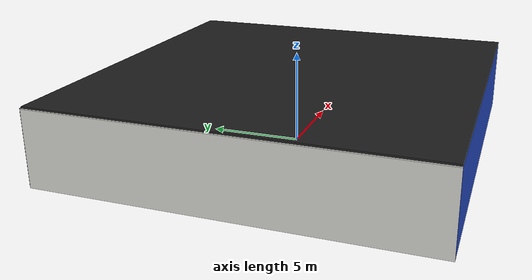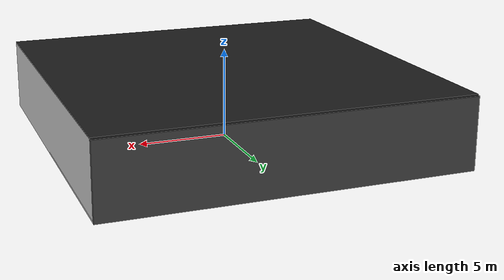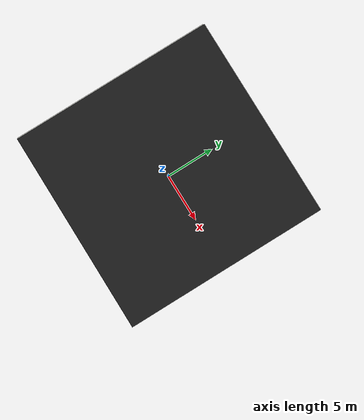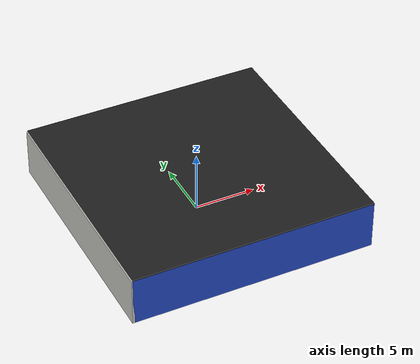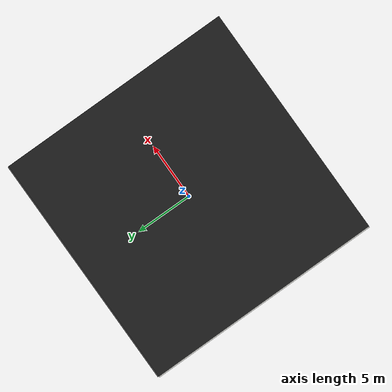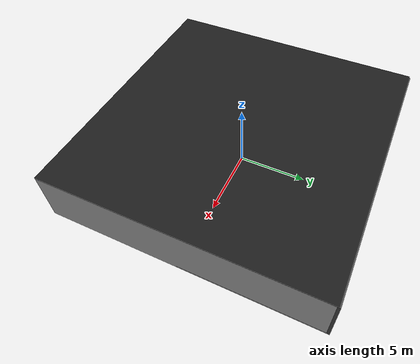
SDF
<sdf version="1.4">
 <world name="default">
  <physics type="ode">
   <max_step_size>0.001</max_step_size>
   <real_time_factor>1</real_time_factor>
   <real_time_update_rate>1000</real_time_update_rate>
   <gravity>0 0 -9.8</gravity>
  </physics>
  <scene><ambient>0.4 0.4 0.4 1</ambient><background>0.7 0.7 0.7 1</background><shadows>1</shadows></scene>
  <model name="Surrounding">
   <static>1</static>
   <link name="Ceiling">
    <collision name="Ceiling_Collision"><geometry><box><size>20 20 0.1</size></box></geometry></collision>
    <visual name="Ceiling_Visual">
     <geometry><box><size>20 20 0.1</size></box></geometry>
     <material>
      <script><uri>file://media/materials/scripts/gazebo.material</uri><name>Gazebo/FlatBlack</name></script>
     </material>
    </visual>
    <pose>0 0 4.05 0 0 0</pose>
   </link>
   <link name="Wall_South">
    <collision name="Wall_South_Collision">
     <geometry><box><size>20 0 4</size></box></geometry>
     <pose>0 0 2 0 -0 0</pose>
    </collision>
    <visual name="Wall_South_Visual">
     <pose>0 0 2 0 -0 0</pose>
     <geometry><box><size>20 0 4</size></box></geometry>
     <material>
      <script><uri>file://media/materials/scripts/gazebo.material</uri><name>Gazebo/BlueGlow</name></script>
     </material>
    </visual>
    <velocity_decay><linear>0</linear><angular>0</angular></velocity_decay>
    <pose>0 -10 0 0 -0 0</pose>
   </link>
   <link name="Wall_East">
    <collision name="Wall_21_Collision">
     <geometry><box><size>20 0 4</size></box></geometry>
     <pose>0 0 2 0 -0 0</pose>
    </collision>
    <visual name="Wall_21_Visual">
     <pose>0 0 2 0 -0 0</pose>
     <geometry><box><size>20 0 4</size></box></geometry>
     <material>
      <script><uri>file://media/materials/scripts/gazebo.material</uri><name>Gazebo/JointAnchor</name></script>
     </material>
    </visual>
    <velocity_decay><linear>0</linear><angular>0</angular></velocity_decay>
    <pose>10 0 0 0 -0 1.5708</pose>
   </link>
   <link name="Wall_North">
    <collision name="Wall_22_Collision">
     <geometry><box><size>20 0.2 4</size></box></geometry>
     <pose>0 0 2 0 -0 0</pose>
    </collision>
    <visual name="Wall_22_Visual">
     <pose>0 0 2 0 -0 0</pose>
     <geometry><box><size>20 0.2 4</size></box></geometry>
     <material>
      <script><uri>file://media/materials/scripts/gazebo.material</uri><name>Gazebo/Road</name></script>
     </material>
    </visual>
    <velocity_decay><linear>0</linear><angular>0</angular></velocity_decay>
    <pose>0 10 0 0 -0 0</pose>
   </link>
   <link name="Wall_West">
    <collision name="Wall_23_Collision">
     <geometry><box><size>20 0.2 4</size></box></geometry>
     <pose>0 0 2 0 -0 0</pose>
    </collision>
    <visual name="Wall_23_Visual">
     <pose>0 0 2 0 -0 0</pose>
     <geometry><box><size>20 0.2 4</size></box></geometry>
     <material>
      <script><uri>file://media/materials/scripts/gazebo.material</uri><name>Gazebo/CeilingTiled</name></script>
     </material>
    </visual>
    <velocity_decay><linear>0</linear><angular>0</angular></velocity_decay>
    <pose>-10 0 0 0 0 -1.5708</pose>
   </link>
   <link name="Ground_link">
    <collision name="collision">
     <pose>0 0 .05 0 -0 0</pose>
     <geometry><box><size>20 20 0.1</size></box></geometry>
    </collision>
    <visual name="visual">
     <pose>0 0 .05 0 -0 0</pose>
     <geometry><box><size>20 20 0.1</size></box></geometry>
     <material>
      <script><uri>file://media/materials/scripts/gazebo.material</uri><name>Gazebo/JointAnchor</name></script>
     </material>
    </visual>
   </link>
   <static>1</static>
  </model>
  <spherical_coordinates>
   <surface_model>EARTH_WGS84</surface_model>
   <latitude_deg>0</latitude_deg>
   <longitude_deg>0</longitude_deg>
   <elevation>0</elevation>
   <heading_deg>0</heading_deg>
  </spherical_coordinates>
  <light name="lightball_0" type="diffuse">
   <diffuse>0.8 0.8 0.8 1</diffuse>
   <specular>0.2 0.2 0.2 1</specular>
   <attenuation>
    <range>100</range>
    <constant>0.7</constant>
    <linear>0.01</linear>
    <quadratic>0.001</quadratic>
   </attenuation>
   <direction>-0.5 0.1 -0.9</direction>
   <pose>4.52435254474 7.42367523011 2.51180501733 0 0 0</pose>
  </light>
  <light name="lightball_1" type="diffuse">
   <diffuse>0.8 0.8 0.8 1</diffuse>
   <specular>0.2 0.2 0.2 1</specular>
   <attenuation>
    <range>100</range>
    <constant>0.7</constant>
    <linear>0.01</linear>
    <quadratic>0.001</quadratic>
   </attenuation>
   <direction>-0.5 0.1 -0.9</direction>
   <pose>-4.14038758982 3.16241583933 2.39055519579 0 0 0</pose>
  </light>
  <light name="lightball_2" type="diffuse">
   <diffuse>0.8 0.8 0.8 1</diffuse>
   <specular>0.2 0.2 0.2 1</specular>
   <attenuation>
    <range>100</range>
    <constant>0.7</constant>
    <linear>0.01</linear>
    <quadratic>0.001</quadratic>
   </attenuation>
   <direction>-0.5 0.1 -0.9</direction>
   <pose>5.85510148411 -0.958135277795 3.35988625924 0 0 0</pose>
  </light>
  <light name="lightball_3" type="diffuse">
   <diffuse>0.8 0.8 0.8 1</diffuse>
   <specular>0.2 0.2 0.2 1</specular>
   <attenuation>
    <range>100</range>
    <constant>0.7</constant>
    <linear>0.01</linear>
    <quadratic>0.001</quadratic>
   </attenuation>
   <direction>-0.5 0.1 -0.9</direction>
   <pose>-3.89772473005 -6.97204621742 1.54794939143 0 0 0</pose>
  </light>
  <light name="lightball_4" type="diffuse">
   <diffuse>0.8 0.8 0.8 1</diffuse>
   <specular>0.2 0.2 0.2 1</specular>
   <attenuation>
    <range>100</range>
    <constant>0.7</constant>
    <linear>0.01</linear>
    <quadratic>0.001</quadratic>
   </attenuation>
   <direction>-0.5 0.1 -0.9</direction>
   <pose>-9.78772869472 -5.99851279411 2.98050652992 0 0 0</pose>
  </light>
  <light name="lightball_5" type="diffuse">
   <diffuse>0.8 0.8 0.8 1</diffuse>
   <specular>0.2 0.2 0.2 1</specular>
   <attenuation>
    <range>100</range>
    <constant>0.7</constant>
    <linear>0.01</linear>
    <quadratic>0.001</quadratic>
   </attenuation>
   <direction>-0.5 0.1 -0.9</direction>
   <pose>-9.89491727601 -1.25797379377 1.05881618257 0 0 0</pose>
  </light>
  <light name="lightball_6" type="diffuse">
   <diffuse>0.8 0.8 0.8 1</diffuse>
   <specular>0.2 0.2 0.2 1</specular>
   <attenuation>
    <range>100</range>
    <constant>0.7</constant>
    <linear>0.01</linear>
    <quadratic>0.001</quadratic>
   </attenuation>
   <direction>-0.5 0.1 -0.9</direction>
   <pose>-3.3063745538 4.99317397564 3.68728444039 0 0 0</pose>
  </light>
  <light name="lightball_7" type="diffuse">
   <diffuse>0.8 0.8 0.8 1</diffuse>
   <specular>0.2 0.2 0.2 1</specular>
   <attenuation>
    <range>100</range>
    <constant>0.7</constant>
    <linear>0.01</linear>
    <quadratic>0.001</quadratic>
   </attenuation>
   <direction>-0.5 0.1 -0.9</direction>
   <pose>4.89386899163 -8.71217759403 3.56602216135 0 0 0</pose>
  </light>
  <light name="lightball_8" type="diffuse">
   <diffuse>0.8 0.8 0.8 1</diffuse>
   <specular>0.2 0.2 0.2 1</specular>
   <attenuation>
    <range>100</range>
    <constant>0.7</constant>
    <linear>0.01</linear>
    <quadratic>0.001</quadratic>
   </attenuation>
   <direction>-0.5 0.1 -0.9</direction>
   <pose>4.47927060152 5.05091940837 3.11136635086 0 0 0</pose>
  </light>
  <light name="lightball_9" type="diffuse">
   <diffuse>0.8 0.8 0.8 1</diffuse>
   <specular>0.2 0.2 0.2 1</specular>
   <attenuation>
    <range>100</range>
    <constant>0.7</constant>
    <linear>0.01</linear>
    <quadratic>0.001</quadratic>
   </attenuation>
   <direction>-0.5 0.1 -0.9</direction>
   <pose>-1.6585815375 -6.32316230591 2.09192974671 0 0 0</pose>
  </light>
  <light name="lightball_10" type="diffuse">
   <diffuse>0.8 0.8 0.8 1</diffuse>
   <specular>0.2 0.2 0.2 1</specular>
   <attenuation>
    <range>100</range>
    <constant>0.7</constant>
    <linear>0.01</linear>
    <quadratic>0.001</quadratic>
   </attenuation>
   <direction>-0.5 0.1 -0.9</direction>
   <pose>3.35106513686 9.35464012119 0.899845096138 0 0 0</pose>
  </light>
  <light name="lightball_11" type="diffuse">
   <diffuse>0.8 0.8 0.8 1</diffuse>
   <specular>0.2 0.2 0.2 1</specular>
   <attenuation>
    <range>100</range>
    <constant>0.7</constant>
    <linear>0.01</linear>
    <quadratic>0.001</quadratic>
   </attenuation>
   <direction>-0.5 0.1 -0.9</direction>
   <pose>-5.34488944536 -9.31203327461 2.28907664279 0 0 0</pose>
  </light>
  <light name="lightball_12" type="diffuse">
   <diffuse>0.8 0.8 0.8 1</diffuse>
   <specular>0.2 0.2 0.2 1</specular>
   <attenuation>
    <range>100</range>
    <constant>0.7</constant>
    <linear>0.01</linear>
    <quadratic>0.001</quadratic>
   </attenuation>
   <direction>-0.5 0.1 -0.9</direction>
   <pose>6.28519128283 6.47184356137 3.54695573068 0 0 0</pose>
  </light>
  <include>
   <uri>model://first_2015_trash_can</uri>
   <pose>-5.0545610886 -1.25196710235 0 0 0 0.101830029451</pose>
  </include>
  <include><uri>model://cabinet</uri><pose>-3.554715893 1.73719525485 0 0 0 1.0331494637</pose></include>
  <include>
   <uri>model://textured_shapes</uri>
   <pose>-0.930382331896 -6.51191862711 0 0 0 0.388141820762</pose>
  </include>
  <include>
   <uri>model://textured_shapes</uri>
   <pose>2.11013588918 -3.91022765055 0 0 0 0.120713430308</pose>
  </include>
  <include><uri>model://cabinet</uri><pose>8.14360539185 -1.16488231581 0 0 0 1.83792628271</pose></include>
 </world>
</sdf>

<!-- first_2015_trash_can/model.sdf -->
<sdf version="1.5">
  <model name="first_2015_trash_can">
    <link name="link">
      <inertial>
        <pose>0 0 0.3683 0 0 0</pose>
        <mass>4.83076</mass>
        <inertia>
          <ixx>0.281534052</ixx>
          <ixy>0</ixy>
          <ixz>0</ixz>
          <iyy>0.281534052</iyy>
          <iyz>0</iyz>
          <izz>0.126222831</izz>
        </inertia>
      </inertial>

      <visual name="visual">
        <geometry>
          <mesh>
            <uri>model://first_2015_trash_can/meshes/trash_can.dae</uri>
          </mesh>
        </geometry>
      </visual>

      <collision name="collision">
        <geometry>
          <mesh>
            <uri>model://first_2015_trash_can/meshes/trash_can.dae</uri>
          </mesh>
        </geometry>
      </collision>
    </link>
  </model>
</sdf>

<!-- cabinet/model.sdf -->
<sdf version="1.5">
  <model name="cabinet">
    <static>true</static>
    <link name="cabinet_bottom_plate">
      <inertial>
        <pose>0 0 -1 0 0 0</pose>
        <inertia>
          <ixx>2.050000</ixx>
          <ixy>0</ixy>
          <ixz>0</ixz>
          <iyy>2.050000</iyy>
          <iyz>0</iyz>
          <izz>2.050000</izz>
        </inertia>
        <mass>25.000000</mass>
      </inertial>
      <collision name="cabinet_bottom_plate_geom">
        <pose>0 0 0.010000 0 0 0</pose>
        <geometry>
          <box>
            <size>0.450000 0.450000 0.020000</size>
          </box>
        </geometry>
      </collision>
      <visual name="cabinet_bottom_plate_geom_visual">
        <pose>0 0 0.010000 0 0 0</pose>
        <geometry>
          <box>
            <size>0.450000 0.450000 0.020000</size>
          </box>
        </geometry>
        <material>
          <script>
            <uri>model://media/materials/scripts/gazebo.material</uri>
            <name>Gazebo/Wood</name>
          </script>
        </material>
      </visual>
      <collision name="cabinet_bottom_plate_geom_cabinet_back_plate">
        <pose>0.235000 0 0.510000 0 0 0</pose>
        <geometry>
          <box>
            <size>0.020000 0.450000 1.020000</size>
          </box>
        </geometry>
      </collision>
      <visual name="cabinet_bottom_plate_geom_cabinet_back_plate_visual">
        <pose>0.235000 0 0.510000 0 0 0</pose>
        <geometry>
          <box>
            <size>0.020000 0.450000 1.020000</size>
          </box>
        </geometry>
        <material>
          <script>
            <uri>model://media/materials/scripts/gazebo.material</uri>
            <name>Gazebo/Wood</name>
          </script>
        </material>
      </visual>
      <collision name="cabinet_bottom_plate_geom_cabinet_left_plate">
        <pose>0 0.235000 0.510000 0 0 0</pose>
        <geometry>
          <box>
            <size>0.450000 0.020000 1.020000</size>
          </box>
        </geometry>
      </collision>
      <visual name="cabinet_bottom_plate_geom_cabinet_left_plate_visual">
        <pose>0 0.235000 0.510000 0 0 0</pose>
        <geometry>
          <box>
            <size>0.450000 0.020000 1.020000</size>
          </box>
        </geometry>
        <material>
          <script>
            <uri>model://media/materials/scripts/gazebo.material</uri>
            <name>Gazebo/Wood</name>
          </script>
        </material>
      </visual>
      <collision name="cabinet_bottom_plate_geom_cabinet_middle_plate">
        <pose>0 0 0.510000 0 0 0</pose>
        <geometry>
          <box>
            <size>0.450000 0.450000 0.020000</size>
          </box>
        </geometry>
      </collision>
      <visual name="cabinet_bottom_plate_geom_cabinet_middle_plate_visual">
        <pose>0 0 0.510000 0 0 0</pose>
        <geometry>
          <box>
            <size>0.450000 0.450000 0.020000</size>
          </box>
        </geometry>
        <material>
          <script>
            <uri>model://media/materials/scripts/gazebo.material</uri>
            <name>Gazebo/Wood</name>
          </script>
        </material>
      </visual>
      <collision name="cabinet_bottom_plate_geom_cabinet_right_plate">
        <pose>0 -0.235000 0.510000 0 0 0</pose>
        <geometry>
          <box>
            <size>0.450000 0.020000 1.020000</size>
          </box>
        </geometry>
      </collision>
      <visual name="cabinet_bottom_plate_geom_cabinet_right_plate_visual">
        <pose>0 -0.235000 0.510000 0 0 0</pose>
        <geometry>
          <box>
            <size>0.450000 0.020000 1.020000</size>
          </box>
        </geometry>
        <material>
          <script>
            <uri>model://media/materials/scripts/gazebo.material</uri>
            <name>Gazebo/Wood</name>
          </script>
        </material>
      </visual>
      <collision name="cabinet_bottom_plate_geom_cabinet_top_plate">
        <pose>0 0 1.010000 0 0 0</pose>
        <geometry>
          <box>
            <size>0.450000 0.450000 0.020000</size>
          </box>
        </geometry>
      </collision>
      <visual name="cabinet_bottom_plate_geom_cabinet_top_plate_visual">
        <pose>0 0 1.010000 0 0 0</pose>
        <geometry>
          <box>
            <size>0.450000 0.450000 0.020000</size>
          </box>
        </geometry>
        <material>
          <script>
            <uri>model://media/materials/scripts/gazebo.material</uri>
            <name>Gazebo/Wood</name>
          </script>
        </material>
      </visual>
    </link>
  </model>
</sdf>

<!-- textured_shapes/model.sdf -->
<sdf version="1.6">
  <model name="textured_shapes">
    <pose>0 0 0.5 0 0 0</pose>
    <link name="box">
      <pose>0 -1.5 0 0 0 0</pose>
      <collision name="collision">
        <geometry>
          <box>
            <size>1 1 1</size>
          </box>
        </geometry>
      </collision>
      <visual name="visual">
        <geometry>
          <box>
            <size>1 1 1</size>
          </box>
        </geometry>
        <material>
          <script>
            <uri>model://../model_source/models/textured_shapes/materials/scripts</uri>
            <uri>model://../model_source/models/textured_shapes/materials/textures</uri>
            <name>TexturedShape/Squares</name>
          </script>
        </material>
      </visual>
    </link>
    <link name="sphere">
      <collision name="collision">
        <geometry>
          <sphere>
            <radius>0.5</radius>
          </sphere>
        </geometry>
      </collision>
      <visual name="visual">
        <geometry>
          <sphere>
            <radius>0.5</radius>
          </sphere>
        </geometry>
        <material>
          <script>
            <uri>model://../model_source/models/textured_shapes/materials/scripts</uri>
            <uri>model://../model_source/models/textured_shapes/materials/textures</uri>
            <name>TexturedShape/Squares</name>
          </script>
        </material>
      </visual>
    </link>
    <link name="cylinder">
      <pose>0 1.5 0 0 0 0</pose>
      <collision name="collision">
        <geometry>
          <cylinder>
            <radius>0.5</radius>
            <length>1</length>
          </cylinder>
        </geometry>
      </collision>
      <visual name="visual">
        <geometry>
          <cylinder>
            <radius>0.5</radius>
            <length>1</length>
          </cylinder>
        </geometry>
        <material>
          <script>
            <uri>model://../model_source/models/textured_shapes/materials/scripts</uri>
            <uri>model://../model_source/models/textured_shapes/materials/textures</uri>
            <name>TexturedShape/Squares</name>
          </script>
        </material>
      </visual>
    </link>
  </model>
</sdf>
